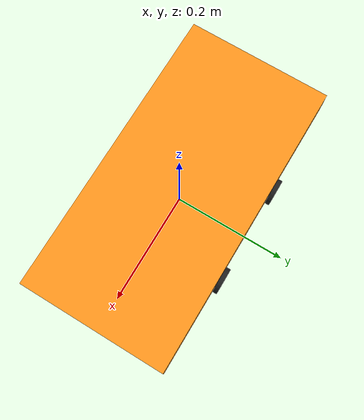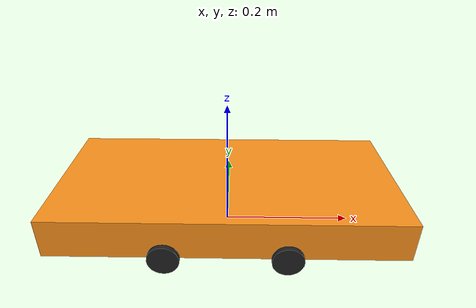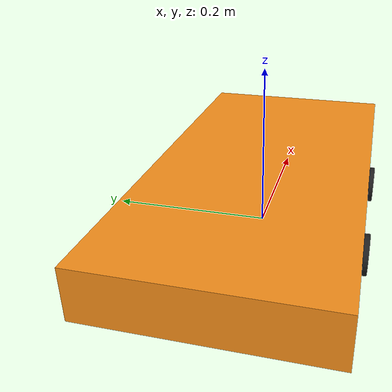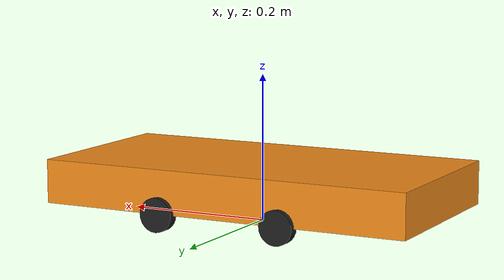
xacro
<?xml version="1.0"?>
<!-- 4 Wheel Robot with front steering and rear drive -->
<robot xmlns:xacro="http://www.ros.org/wiki/xacro" name="mirte_dart_robot">
  <xacro:arg name="prefix" default="" />

  <xacro:include filename="$(find mirte_dart_control)/urdf/mirte_dart_description.urdf.xacro" />

  <!-- Import Rviz colors -->

  <!-- Import mirte_dart ros2_control description -->
  <xacro:include filename="$(find mirte_dart_control)/ros2_control/mirte_dart_control_ros2_control.xacro" />

  <xacro:mirte_dart prefix="$(arg prefix)" />
   <xacro:mirte_dart_ros2_control
    name="MIRTEonDART" prefix="$(arg prefix)" />

</robot>

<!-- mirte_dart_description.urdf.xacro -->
<robot xmlns:xacro="http://www.ros.org/wiki/xacro">

  <xacro:macro name="mirte_dart" params="prefix">

  <!-- Constants for robot dimensions -->
  <xacro:property name="PI" value="3.1415926535897931"/>
  <xacro:property name="base_mass" value="4.0" /> <!-- arbitrary value for base mass -->
  <xacro:property name="base_width" value="0.260" />
  <xacro:property name="base_length" value="0.525" />
  <xacro:property name="base_height" value="0.060" />
  <xacro:property name="wheelbase" value="0.176" />
  <xacro:property name="wheel_mass" value="0.34055" /> <!-- arbitrary value for wheel mass -->
  <xacro:property name="wheel_len" value="0.015" />
  <xacro:property name="wheel_radius" value="0.0233" />

  <!-- Base Link -->
  <link name="${prefix}base_link" />

  <!-- Chassis -->

  <link name="${prefix}chassis_link">
    <collision>
      <origin xyz="0 0 0" rpy="0 0 0"/>
      <geometry>
        <box size="${base_length} ${base_width} ${base_height}"/>
      </geometry>
    </collision>

    <visual>
      <origin xyz="0 0 0" rpy="0 0 0"/>
      <geometry>
        <box size="${base_length} ${base_width} ${base_height}"/>
      </geometry>
      <material name="orange"/>
    </visual>

    <inertial>
      <origin xyz="0 0 0" rpy="0 0 0"/>
      <mass value="${base_mass}"/>
        <inertia
          ixx="0.000270" ixy="0.0" ixz="0.0"
          iyy="0.000270" iyz="0.0"
          izz="0.000426"/>
      </inertial>
    </link>

    <joint name="${prefix}chassis_joint" type="fixed">
      <parent link="${prefix}base_link"/>
      <child link="${prefix}chassis_link"/>
      <origin xyz="0 0 ${base_height/2 + wheel_radius}" rpy="0 0 0"/>
      <axis xyz="0 0 1"/>
      <dynamics damping="0.2"/>
    </joint>

    <!-- rear wheels -->

    <!-- virtual rear wheel -->

    <link name="${prefix}virtual_rear_wheel">
      <visual>
        <origin xyz="0 0 0" rpy="${PI/2} 0 ${PI/2}"/>
        <geometry>
          <cylinder length="0.01" radius="${wheel_radius}"/>
        </geometry>
        <material name="invisible"/>
      </visual>
    </link>

    <joint name="${prefix}virtual_rear_wheel_joint" type="continuous">
      <parent link="${prefix}chassis_link"/>
      <child link="${prefix}virtual_rear_wheel"/>
      <origin xyz="-${wheelbase/2} 0 -${base_height/2}" rpy="0 0 ${PI/2}"/>
      <axis xyz="1 0 0"/>
      <limit effort="100.0" velocity="100.0"/>
      <dynamics damping="0.2"/>
    </joint>

    <!-- rear right wheel -->

    <link name="${prefix}rear_right_wheel">
      <collision>
        <origin xyz="0 0 0" rpy="${PI/2} 0 ${PI/2}"/>
        <geometry>
          <cylinder length="${wheel_len}" radius="${wheel_radius}"/>
        </geometry>
      </collision>

      <visual>
        <origin xyz="0 0 0" rpy="${PI/2} 0 ${PI/2}"/>
        <geometry>
          <cylinder length="${wheel_len}" radius="${wheel_radius}"/>
        </geometry>
        <material name="black"/>
      </visual>

      <inertial>
        <origin xyz="0 0 0" rpy="${PI/2} 0 ${PI/2}"/>
        <mass value="${wheel_mass}"/>
        <inertia
          ixx="0.000270" ixy="0.0" ixz="0.0"
          iyy="0.000270" iyz="0.0"
          izz="0.000426"/>
      </inertial>

    </link>

    <joint name="${prefix}rear_right_wheel_joint" type="continuous">
      <parent link="${prefix}chassis_link"/>
      <child link="${prefix}rear_right_wheel"/>
      <origin xyz="-${wheelbase/2} ${base_width/2} -${base_height/2}" rpy="0 0 ${PI/2}"/>
      <axis xyz="1 0 0"/>
      <limit effort="100.0" velocity="100.0"/>
      <dynamics damping="0.2"/>
      <mimic joint="${prefix}virtual_rear_wheel_joint" multiplier="1.0" offset="0.0"/>
    </joint>

    <!-- rear left wheel -->
    <link name="${prefix}rear_left_wheel">
        <collision>
          <origin xyz="0 0 0" rpy="${PI/2} 0 ${PI/2}"/>
          <geometry>
            <cylinder length="${wheel_len}" radius="${wheel_radius}"/>
          </geometry>
        </collision>

        <visual>
          <origin xyz="0 0 0" rpy="${PI/2} 0 ${PI/2}"/>
          <geometry>
            <cylinder length="${wheel_len}" radius="${wheel_radius}"/>
          </geometry>
          <material name="black"/>
        </visual>

        <inertial>
          <origin xyz="0 0 0" rpy="${PI/2} 0 ${PI/2}"/>
          <mass value="${wheel_mass}"/>
          <inertia
            ixx="0.000270" ixy="0.0" ixz="0.0"
            iyy="0.000270" iyz="0.0"
            izz="0.000426"/>
        </inertial>

    </link>

    <joint name="${prefix}rear_left_wheel_joint" type="continuous">
      <parent link="${prefix}chassis_link" />
      <child link="${prefix}rear_left_wheel" />
      <origin xyz="-${wheelbase/2} -${base_width/2} -${base_height/2}" rpy="0 0 ${PI/2}"/>
      <axis xyz="1 0 0"/>
      <limit effort="100.0" velocity="100.0"/>
      <dynamics damping="0.2"/>
      <mimic joint="${prefix}virtual_rear_wheel_joint" multiplier="1.0" offset="0.0"/>
    </joint>

    <!-- front wheels -->

    <!-- virtual front wheel -->

    <link name="${prefix}virtual_front_wheel">
      <visual>
        <origin xyz="0 0 0" rpy="${PI/2} 0 ${PI/2}"/>
        <geometry>
          <cylinder length="0.01" radius="${wheel_radius}"/>
        </geometry>
        <material name="invisible"/>
      </visual>
    </link>

    <joint name="${prefix}virtual_front_wheel_joint" type="revolute">
      <parent link="${prefix}chassis_link"/>
      <child link="${prefix}virtual_front_wheel"/>
      <origin xyz="${wheelbase/2} 0 -${base_height/2}" rpy="0 0 ${PI/2}"/>
      <axis xyz="0 0 1"/>
      <limit lower="-0.4" upper="0.4" effort="100.0" velocity="10.0"/>
      <dynamics damping="0.2"/>
    </joint>

    <!-- front right wheel -->

    <link name="${prefix}front_right_wheel">

      <collision>
        <origin xyz="0 0 0" rpy="${PI/2} 0 ${PI/2}"/>
        <geometry>
          <cylinder length="${wheel_len}" radius="${wheel_radius}"/>
        </geometry>
      </collision>

      <visual>
        <origin xyz="0 0 0" rpy="${PI/2} 0 ${PI/2}"/>
        <geometry>
          <cylinder length="${wheel_len}" radius="${wheel_radius}"/>
        </geometry>
        <material name="black"/>
      </visual>

      <inertial>
        <origin xyz="0 0 0" rpy="${PI/2} 0 ${PI/2}"/>
        <mass value="${wheel_mass}"/>
        <inertia
          ixx="0.000270" ixy="0.0" ixz="0.0"
          iyy="0.000270" iyz="0.0"
          izz="0.000426"/>
      </inertial>
    </link>

    <joint name="${prefix}front_right_wheel_joint" type="revolute">
      <parent link="${prefix}chassis_link" />
      <child link="${prefix}front_right_wheel" />
      <origin xyz="${wheelbase/2} ${base_width/2} -${base_height/2}" rpy="0 0 ${PI/2}"/>
      <axis xyz="0 0 1"/>
      <limit lower="-0.4" upper="0.4" effort="100.0" velocity="10.0"/>
      <dynamics damping="0.2"/>
      <mimic joint="${prefix}virtual_front_wheel_joint" multiplier="1.0" offset="0.0"/>
    </joint>

    <!-- front left steering -->

    <link name="${prefix}front_left_wheel">
      <collision>
        <origin xyz="0 0 0" rpy="${PI/2} 0 ${PI/2}"/>
        <geometry>
          <cylinder length="${wheel_len}" radius="${wheel_radius}"/>
        </geometry>
      </collision>

      <visual>
        <origin xyz="0 0 0" rpy="${PI/2} 0 ${PI/2}"/>
        <geometry>
          <cylinder length="${wheel_len}" radius="${wheel_radius}"/>
        </geometry>
        <material name="black"/>
      </visual>

      <inertial>
        <origin xyz="0 0 0" rpy="${PI/2} 0 ${PI/2}"/>
        <mass value="${wheel_mass}"/>
        <inertia
          ixx="0.000270" ixy="0.0" ixz="0.0"
          iyy="0.000270" iyz="0.0"
          izz="0.000426"/>
      </inertial>

    </link>

    <joint name="${prefix}front_left_wheel_joint" type="revolute">
      <parent link="${prefix}chassis_link" />
      <child link="${prefix}front_left_wheel" />
      <origin xyz="${wheelbase/2} -${base_width/2} -${base_height/2}" rpy="0 0 ${PI/2}"/>
      <axis xyz="0 0 1"/>
      <limit lower="-0.4" upper="0.4" effort="100.0" velocity="10.0"/>
      <dynamics damping="0.2"/>
      <mimic joint="${prefix}virtual_front_wheel_joint" multiplier="1.0" offset="0.0"/>
    </joint>

  </xacro:macro>

</robot>
